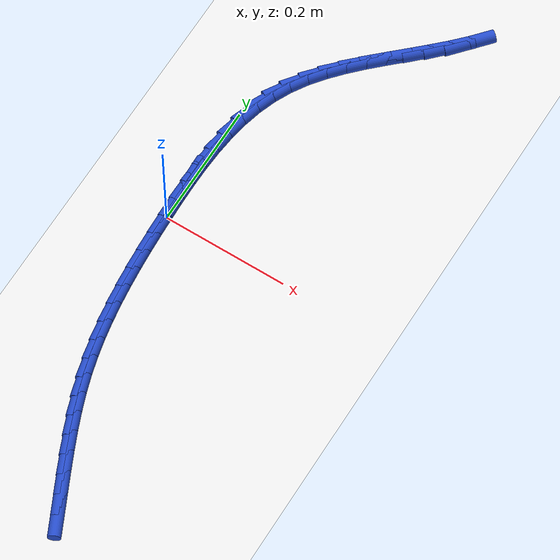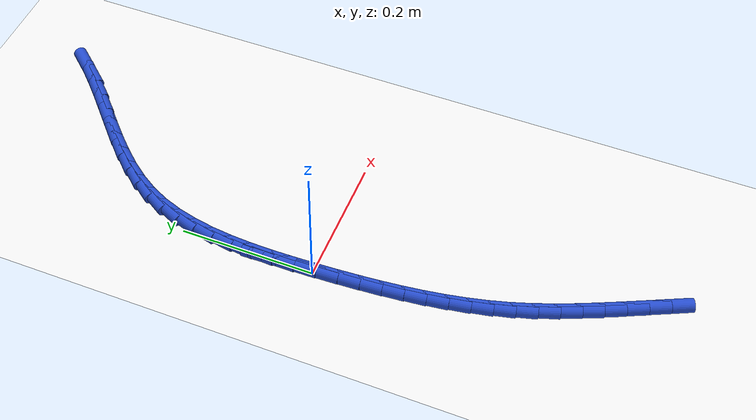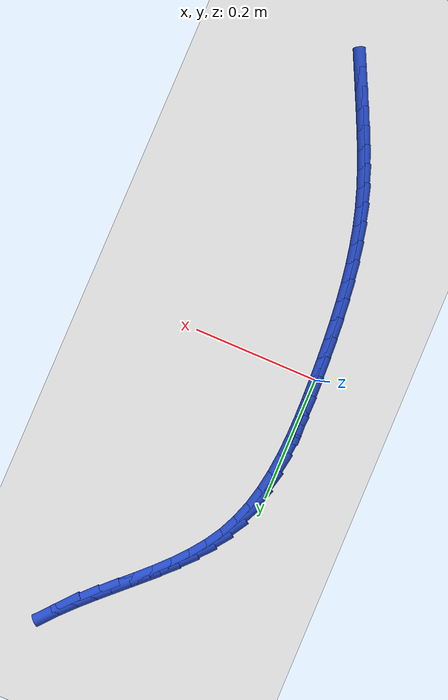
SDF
<sdf version="1.6">
 <world name="default">
  <model name="ground_plane">
   <static>1</static>
   <link name="link">
    <collision name="collision">
     <geometry><plane><normal>0 0 1</normal><size>100 100</size></plane></geometry>
     <surface><friction><ode><mu>100</mu><mu2>50</mu2></ode></friction></surface>
    </collision>
    <visual name="visual">
     <cast_shadows>0</cast_shadows>
     <geometry><plane><normal>0 0 1</normal><size>100 100</size></plane></geometry>
     <material>
      <script><uri>file://media/materials/scripts/gazebo.material</uri><name>Gazebo/WhiteGlow</name></script>
     </material>
    </visual>
   </link>
  </model>
  <model name="line">
   <link name="link_0">
    <pose>-7.589415207398531e-18 0.0 0.01 0 1.57 -1.5366979075146932</pose>
    <collision name="collision">
     <geometry><cylinder><radius>0.01</radius><length>0.08</length></cylinder></geometry>
    </collision>
    <visual name="visual">
     <material>
      <script><name>Gazebo/Blue</name><uri>file://media/materials/scripts/gazebo.material</uri></script>
     </material>
     <geometry><cylinder><radius>0.01</radius><length>0.08</length></cylinder></geometry>
    </visual>
   </link>
   <link name="link_1">
    <pose>-0.0010923447116756582 0.03202263755056824 0.01 0 1.57 -1.5561404084608057</pose>
    <collision name="collision">
     <geometry><cylinder><radius>0.01</radius><length>0.08</length></cylinder></geometry>
    </collision>
    <visual name="visual">
     <material>
      <script><name>Gazebo/Blue</name><uri>file://media/materials/scripts/gazebo.material</uri></script>
     </material>
     <geometry><cylinder><radius>0.01</radius><length>0.08</length></cylinder></geometry>
    </visual>
   </link>
   <link name="link_2">
    <pose>-0.0015623839590746913 0.06409197514024975 0.01 0 1.57 1.5562377652178665</pose>
    <collision name="collision">
     <geometry><cylinder><radius>0.01</radius><length>0.08</length></cylinder></geometry>
    </collision>
    <visual name="visual">
     <material>
      <script><name>Gazebo/Blue</name><uri>file://media/materials/scripts/gazebo.material</uri></script>
     </material>
     <geometry><cylinder><radius>0.01</radius><length>0.08</length></cylinder></geometry>
    </visual>
   </link>
   <link name="link_3">
    <pose>-0.0010977071740875303 0.09600748769856667 0.01 0 1.57 1.5166117639212087</pose>
    <collision name="collision">
     <geometry><cylinder><radius>0.01</radius><length>0.08</length></cylinder></geometry>
    </collision>
    <visual name="visual">
     <material>
      <script><name>Gazebo/Blue</name><uri>file://media/materials/scripts/gazebo.material</uri></script>
     </material>
     <geometry><cylinder><radius>0.01</radius><length>0.08</length></cylinder></geometry>
    </visual>
   </link>
   <link name="link_4">
    <pose>0.000614096211395404 0.12756865015504104 0.01 0 1.57 1.4656794937568811</pose>
    <collision name="collision">
     <geometry><cylinder><radius>0.01</radius><length>0.08</length></cylinder></geometry>
    </collision>
    <visual name="visual">
     <material>
      <script><name>Gazebo/Blue</name><uri>file://media/materials/scripts/gazebo.material</uri></script>
     </material>
     <geometry><cylinder><radius>0.01</radius><length>0.08</length></cylinder></geometry>
    </visual>
   </link>
   <link name="link_5">
    <pose>0.0038854367654836902 0.15857493743919482 0.01 0 1.57 1.4023856880816412</pose>
    <collision name="collision">
     <geometry><cylinder><radius>0.01</radius><length>0.08</length></cylinder></geometry>
    </collision>
    <visual name="visual">
     <material>
      <script><name>Gazebo/Blue</name><uri>file://media/materials/scripts/gazebo.material</uri></script>
     </material>
     <geometry><cylinder><radius>0.01</radius><length>0.08</length></cylinder></geometry>
    </visual>
   </link>
   <link name="link_6">
    <pose>0.00902872505628691 0.18882582448055024 0.01 0 1.57 1.3256921719895018</pose>
    <collision name="collision">
     <geometry><cylinder><radius>0.01</radius><length>0.08</length></cylinder></geometry>
    </collision>
    <visual name="visual">
     <material>
      <script><name>Gazebo/Blue</name><uri>file://media/materials/scripts/gazebo.material</uri></script>
     </material>
     <geometry><cylinder><radius>0.01</radius><length>0.08</length></cylinder></geometry>
    </visual>
   </link>
   <link name="link_7">
    <pose>0.016356371651914642 0.2181207862086292 0.01 0 1.57 1.2348835637795994</pose>
    <collision name="collision">
     <geometry><cylinder><radius>0.01</radius><length>0.08</length></cylinder></geometry>
    </collision>
    <visual name="visual">
     <material>
      <script><name>Gazebo/Blue</name><uri>file://media/materials/scripts/gazebo.material</uri></script>
     </material>
     <geometry><cylinder><radius>0.01</radius><length>0.08</length></cylinder></geometry>
    </visual>
   </link>
   <link name="link_8">
    <pose>0.02618078712047646 0.24625929755295387 0.01 0 1.57 1.1300312105737216</pose>
    <collision name="collision">
     <geometry><cylinder><radius>0.01</radius><length>0.08</length></cylinder></geometry>
    </collision>
    <visual name="visual">
     <material>
      <script><name>Gazebo/Blue</name><uri>file://media/materials/scripts/gazebo.material</uri></script>
     </material>
     <geometry><cylinder><radius>0.01</radius><length>0.08</length></cylinder></geometry>
    </visual>
   </link>
   <link name="link_9">
    <pose>0.03881412423013129 0.2730409818456343 0.01 0 1.57 1.0198916303049563</pose>
    <collision name="collision">
     <geometry><cylinder><radius>0.01</radius><length>0.08</length></cylinder></geometry>
    </collision>
    <visual name="visual">
     <material>
      <script><name>Gazebo/Blue</name><uri>file://media/materials/scripts/gazebo.material</uri></script>
     </material>
     <geometry><cylinder><radius>0.01</radius><length>0.08</length></cylinder></geometry>
    </visual>
   </link>
   <link name="link_10">
    <pose>0.05437813597161116 0.29837506608501224 0.01 0 1.57 0.9269064998506293</pose>
    <collision name="collision">
     <geometry><cylinder><radius>0.01</radius><length>0.08</length></cylinder></geometry>
    </collision>
    <visual name="visual">
     <material>
      <script><name>Gazebo/Blue</name><uri>file://media/materials/scripts/gazebo.material</uri></script>
     </material>
     <geometry><cylinder><radius>0.01</radius><length>0.08</length></cylinder></geometry>
    </visual>
   </link>
   <link name="link_11">
    <pose>0.07246723397081867 0.3224743414212468 0.01 0 1.57 0.854916132959737</pose>
    <collision name="collision">
     <geometry><cylinder><radius>0.01</radius><length>0.08</length></cylinder></geometry>
    </collision>
    <visual name="visual">
     <material>
      <script><name>Gazebo/Blue</name><uri>file://media/materials/scripts/gazebo.material</uri></script>
     </material>
     <geometry><cylinder><radius>0.01</radius><length>0.08</length></cylinder></geometry>
    </visual>
   </link>
   <link name="link_12">
    <pose>0.0925852866085653 0.3456037202398714 0.01 0 1.57 0.8029463173448101</pose>
    <collision name="collision">
     <geometry><cylinder><radius>0.01</radius><length>0.08</length></cylinder></geometry>
    </collision>
    <visual name="visual">
     <material>
      <script><name>Gazebo/Blue</name><uri>file://media/materials/scripts/gazebo.material</uri></script>
     </material>
     <geometry><cylinder><radius>0.01</radius><length>0.08</length></cylinder></geometry>
    </visual>
   </link>
   <link name="link_13">
    <pose>0.11423616226566254 0.3680281149264193 0.01 0 1.57 0.7696570332971142</pose>
    <collision name="collision">
     <geometry><cylinder><radius>0.01</radius><length>0.08</length></cylinder></geometry>
    </collision>
    <visual name="visual">
     <material>
      <script><name>Gazebo/Blue</name><uri>file://media/materials/scripts/gazebo.material</uri></script>
     </material>
     <geometry><cylinder><radius>0.01</radius><length>0.08</length></cylinder></geometry>
    </visual>
   </link>
   <link name="link_14">
    <pose>0.1369237293229219 0.3900124378664239 0.01 0 1.57 0.753902173908188</pose>
    <collision name="collision">
     <geometry><cylinder><radius>0.01</radius><length>0.08</length></cylinder></geometry>
    </collision>
    <visual name="visual">
     <material>
      <script><name>Gazebo/Blue</name><uri>file://media/materials/scripts/gazebo.material</uri></script>
     </material>
     <geometry><cylinder><radius>0.01</radius><length>0.08</length></cylinder></geometry>
    </visual>
   </link>
   <link name="link_15">
    <pose>0.16015185616115493 0.4118216014454189 0.01 0 1.57 0.7549981085339544</pose>
    <collision name="collision">
     <geometry><cylinder><radius>0.01</radius><length>0.08</length></cylinder></geometry>
    </collision>
    <visual name="visual">
     <material>
      <script><name>Gazebo/Blue</name><uri>file://media/materials/scripts/gazebo.material</uri></script>
     </material>
     <geometry><cylinder><radius>0.01</radius><length>0.08</length></cylinder></geometry>
    </visual>
   </link>
   <link name="link_16">
    <pose>0.1834244111611731 0.43372051804893735 0.01 0 1.57 0.7728136551110324</pose>
    <collision name="collision">
     <geometry><cylinder><radius>0.01</radius><length>0.08</length></cylinder></geometry>
    </collision>
    <visual name="visual">
     <material>
      <script><name>Gazebo/Blue</name><uri>file://media/materials/scripts/gazebo.material</uri></script>
     </material>
     <geometry><cylinder><radius>0.01</radius><length>0.08</length></cylinder></geometry>
    </visual>
   </link>
   <link name="link_17">
    <pose>0.20624526270378798 0.4559741000625128 0.01 0 1.57 0.8077459240966005</pose>
    <collision name="collision">
     <geometry><cylinder><radius>0.01</radius><length>0.08</length></cylinder></geometry>
    </collision>
    <visual name="visual">
     <material>
      <script><name>Gazebo/Blue</name><uri>file://media/materials/scripts/gazebo.material</uri></script>
     </material>
     <geometry><cylinder><radius>0.01</radius><length>0.08</length></cylinder></geometry>
    </visual>
   </link>
   <link name="link_18">
    <pose>0.228118279169811 0.47884725987167864 0.01 0 1.57 0.8605865200698543</pose>
    <collision name="collision">
     <geometry><cylinder><radius>0.01</radius><length>0.08</length></cylinder></geometry>
    </collision>
    <visual name="visual">
     <material>
      <script><name>Gazebo/Blue</name><uri>file://media/materials/scripts/gazebo.material</uri></script>
     </material>
     <geometry><cylinder><radius>0.01</radius><length>0.08</length></cylinder></geometry>
    </visual>
   </link>
   <link name="link_214">
    <pose>0.12152226767293446 -0.46827321221409796 0.01 0 1.57 -1.1233339749693763</pose>
    <collision name="collision">
     <geometry><cylinder><radius>0.01</radius><length>0.08</length></cylinder></geometry>
    </collision>
    <visual name="visual">
     <material>
      <script><name>Gazebo/Blue</name><uri>file://media/materials/scripts/gazebo.material</uri></script>
     </material>
     <geometry><cylinder><radius>0.01</radius><length>0.08</length></cylinder></geometry>
    </visual>
   </link>
   <link name="link_215">
    <pose>0.10789638503683631 -0.43988176319954597 0.01 0 1.57 -1.1254799652332415</pose>
    <collision name="collision">
     <geometry><cylinder><radius>0.01</radius><length>0.08</length></cylinder></geometry>
    </collision>
    <visual name="visual">
     <material>
      <script><name>Gazebo/Blue</name><uri>file://media/materials/scripts/gazebo.material</uri></script>
     </material>
     <geometry><cylinder><radius>0.01</radius><length>0.08</length></cylinder></geometry>
    </visual>
   </link>
   <link name="link_216">
    <pose>0.094560699663082 -0.41194142817200213 0.01 0 1.57 -1.1349942149312107</pose>
    <collision name="collision">
     <geometry><cylinder><radius>0.01</radius><length>0.08</length></cylinder></geometry>
    </collision>
    <visual name="visual">
     <material>
      <script><name>Gazebo/Blue</name><uri>file://media/materials/scripts/gazebo.material</uri></script>
     </material>
     <geometry><cylinder><radius>0.01</radius><length>0.08</length></cylinder></geometry>
    </visual>
   </link>
   <link name="link_217">
    <pose>0.0816843616124213 -0.38428976456426656 0.01 0 1.57 -1.1521378274490337</pose>
    <collision name="collision">
     <geometry><cylinder><radius>0.01</radius><length>0.08</length></cylinder></geometry>
    </collision>
    <visual name="visual">
     <material>
      <script><name>Gazebo/Blue</name><uri>file://media/materials/scripts/gazebo.material</uri></script>
     </material>
     <geometry><cylinder><radius>0.01</radius><length>0.08</length></cylinder></geometry>
    </visual>
   </link>
   <link name="link_218">
    <pose>0.06943652094560437 -0.3567643298091405 0.01 0 1.57 -1.1770514267180396</pose>
    <collision name="collision">
     <geometry><cylinder><radius>0.01</radius><length>0.08</length></cylinder></geometry>
    </collision>
    <visual name="visual">
     <material>
      <script><name>Gazebo/Blue</name><uri>file://media/materials/scripts/gazebo.material</uri></script>
     </material>
     <geometry><cylinder><radius>0.01</radius><length>0.08</length></cylinder></geometry>
    </visual>
   </link>
   <link name="link_219">
    <pose>0.05798632772338113 -0.329202681339424 0.01 0 1.57 -1.2097133291255395</pose>
    <collision name="collision">
     <geometry><cylinder><radius>0.01</radius><length>0.08</length></cylinder></geometry>
    </collision>
    <visual name="visual">
     <material>
      <script><name>Gazebo/Blue</name><uri>file://media/materials/scripts/gazebo.material</uri></script>
     </material>
     <geometry><cylinder><radius>0.01</radius><length>0.08</length></cylinder></geometry>
    </visual>
   </link>
   <link name="link_220">
    <pose>0.04750293200650228 -0.3014423765879196 0.01 0 1.57 -1.2498894148037558</pose>
    <collision name="collision">
     <geometry><cylinder><radius>0.01</radius><length>0.08</length></cylinder></geometry>
    </collision>
    <visual name="visual">
     <material>
      <script><name>Gazebo/Blue</name><uri>file://media/materials/scripts/gazebo.material</uri></script>
     </material>
     <geometry><cylinder><radius>0.01</radius><length>0.08</length></cylinder></geometry>
    </visual>
   </link>
   <link name="link_221">
    <pose>0.038155483855717716 -0.2733209729874276 0.01 0 1.57 -1.2958555517227566</pose>
    <collision name="collision">
     <geometry><cylinder><radius>0.01</radius><length>0.08</length></cylinder></geometry>
    </collision>
    <visual name="visual">
     <material>
      <script><name>Gazebo/Blue</name><uri>file://media/materials/scripts/gazebo.material</uri></script>
     </material>
     <geometry><cylinder><radius>0.01</radius><length>0.08</length></cylinder></geometry>
    </visual>
   </link>
   <link name="link_222">
    <pose>0.030081370327038767 -0.24469795942814287 0.01 0 1.57 -1.3399487086693904</pose>
    <collision name="collision">
     <geometry><cylinder><radius>0.01</radius><length>0.08</length></cylinder></geometry>
    </collision>
    <visual name="visual">
     <material>
      <script><name>Gazebo/Blue</name><uri>file://media/materials/scripts/gazebo.material</uri></script>
     </material>
     <geometry><cylinder><radius>0.01</radius><length>0.08</length></cylinder></geometry>
    </visual>
   </link>
   <link name="link_223">
    <pose>0.023232984595892958 -0.2155605578482999 0.01 0 1.57 -1.3794668925005893</pose>
    <collision name="collision">
     <geometry><cylinder><radius>0.01</radius><length>0.08</length></cylinder></geometry>
    </collision>
    <visual name="visual">
     <material>
      <script><name>Gazebo/Blue</name><uri>file://media/materials/scripts/gazebo.material</uri></script>
     </material>
     <geometry><cylinder><radius>0.01</radius><length>0.08</length></cylinder></geometry>
    </visual>
   </link>
   <link name="link_224">
    <pose>0.01749592668238684 -0.18594210897282393 0.01 0 1.57 -1.414423475688152</pose>
    <collision name="collision">
     <geometry><cylinder><radius>0.01</radius><length>0.08</length></cylinder></geometry>
    </collision>
    <visual name="visual">
     <material>
      <script><name>Gazebo/Blue</name><uri>file://media/materials/scripts/gazebo.material</uri></script>
     </material>
     <geometry><cylinder><radius>0.01</radius><length>0.08</length></cylinder></geometry>
    </visual>
   </link>
   <link name="link_225">
    <pose>0.012755706169167023 -0.15587601597114895 0.01 0 1.57 -1.4448965073098234</pose>
    <collision name="collision">
     <geometry><cylinder><radius>0.01</radius><length>0.08</length></cylinder></geometry>
    </collision>
    <visual name="visual">
     <material>
      <script><name>Gazebo/Blue</name><uri>file://media/materials/scripts/gazebo.material</uri></script>
     </material>
     <geometry><cylinder><radius>0.01</radius><length>0.08</length></cylinder></geometry>
    </visual>
   </link>
   <link name="link_226">
    <pose>0.008897832638880289 -0.12539568201270956 0.01 0 1.57 -1.471002561425655</pose>
    <collision name="collision">
     <geometry><cylinder><radius>0.01</radius><length>0.08</length></cylinder></geometry>
    </collision>
    <visual name="visual">
     <material>
      <script><name>Gazebo/Blue</name><uri>file://media/materials/scripts/gazebo.material</uri></script>
     </material>
     <geometry><cylinder><radius>0.01</radius><length>0.08</length></cylinder></geometry>
    </visual>
   </link>
   <link name="link_227">
    <pose>0.005807815674173429 -0.0945345102669404 0.01 0 1.57 -1.492878151740633</pose>
    <collision name="collision">
     <geometry><cylinder><radius>0.01</radius><length>0.08</length></cylinder></geometry>
    </collision>
    <visual name="visual">
     <material>
      <script><name>Gazebo/Blue</name><uri>file://media/materials/scripts/gazebo.material</uri></script>
     </material>
     <geometry><cylinder><radius>0.01</radius><length>0.08</length></cylinder></geometry>
    </visual>
   </link>
   <link name="link_228">
    <pose>0.003371164857693184 -0.06332590390327533 0.01 0 1.57 -1.510665342159818</pose>
    <collision name="collision">
     <geometry><cylinder><radius>0.01</radius><length>0.08</length></cylinder></geometry>
    </collision>
    <visual name="visual">
     <material>
      <script><name>Gazebo/Blue</name><uri>file://media/materials/scripts/gazebo.material</uri></script>
     </material>
     <geometry><cylinder><radius>0.01</radius><length>0.08</length></cylinder></geometry>
    </visual>
   </link>
   <link name="link_229">
    <pose>0.0014733897720864617 -0.03180326609115053 0.01 0 1.57 -1.5245011756102582</pose>
    <collision name="collision">
     <geometry><cylinder><radius>0.01</radius><length>0.08</length></cylinder></geometry>
    </collision>
    <visual name="visual">
     <material>
      <script><name>Gazebo/Blue</name><uri>file://media/materials/scripts/gazebo.material</uri></script>
     </material>
     <geometry><cylinder><radius>0.01</radius><length>0.08</length></cylinder></geometry>
    </visual>
   </link>
   <link name="link_230">
    <pose>-1.6317242695906842e-17 1.3877787807814457e-16 0.01 0 1.57 -1.5345103249356649</pose>
    <collision name="collision">
     <geometry><cylinder><radius>0.01</radius><length>0.08</length></cylinder></geometry>
    </collision>
    <visual name="visual">
     <material>
      <script><name>Gazebo/Blue</name><uri>file://media/materials/scripts/gazebo.material</uri></script>
     </material>
     <geometry><cylinder><radius>0.01</radius><length>0.08</length></cylinder></geometry>
    </visual>
   </link>
   <link name="link_231">
    <pose>-0.0011634948759194584 0.03205049120074207 0.01 0 1.57 -1.5408003363032214</pose>
    <collision name="collision">
     <geometry><cylinder><radius>0.01</radius><length>0.08</length></cylinder></geometry>
    </collision>
    <visual name="visual">
     <material>
      <script><name>Gazebo/Blue</name><uri>file://media/materials/scripts/gazebo.material</uri></script>
     </material>
     <geometry><cylinder><radius>0.01</radius><length>0.08</length></cylinder></geometry>
    </visual>
   </link>
   <link name="link_232">
    <pose>-0.002131585273025076 0.06431480434164064 0.01 0 1.57 -1.537665458667538</pose>
    <collision name="collision">
     <geometry><cylinder><radius>0.01</radius><length>0.08</length></cylinder></geometry>
    </collision>
    <visual name="visual">
     <material>
      <script><name>Gazebo/Blue</name><uri>file://media/materials/scripts/gazebo.material</uri></script>
     </material>
     <geometry><cylinder><radius>0.01</radius><length>0.08</length></cylinder></geometry>
    </visual>
   </link>
  </model>
 </world>
</sdf>
